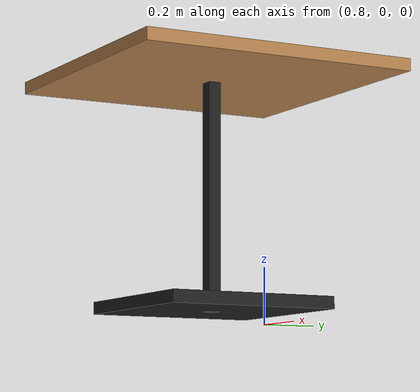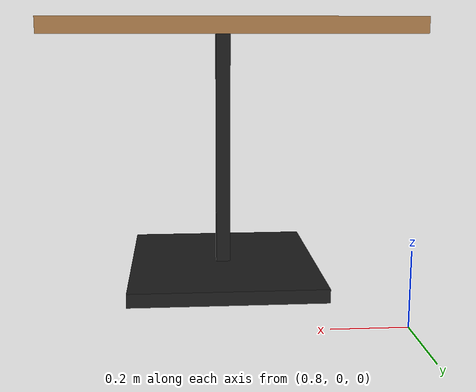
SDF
<?xml version="1.0" ?>
<sdf version="1.5">
    <model name='table_c'>
      <link name='link'>
        <collision name='surface'>
          <pose frame=''>0 0 0.755 0 -0 0</pose>
          <geometry>
            <box>
              <size>0.913 0.913 0.04</size>
            </box>
          </geometry>
          <max_contacts>10</max_contacts>
          <surface>
            <contact/>
            <friction>
              <ode/>
            </friction>
          </surface>
        </collision>
        <collision name='column'>
          <pose frame=''>0 0 0.37 0 -0 0</pose>
          <geometry>
            <box>
              <size>0.042 0.042 0.74</size>
            </box>
          </geometry>
          <max_contacts>10</max_contacts>
          <surface>
            <contact/>
            <friction>
              <ode/>
            </friction>
          </surface>
        </collision>
        <collision name='base'>
          <pose frame=''>0 0 0.02 0 -0 0</pose>
          <geometry>
            <box>
              <size>0.56 0.56 0.04</size>
            </box>
          </geometry>
          <max_contacts>10</max_contacts>
          <surface>
            <contact/>
            <friction>
              <ode/>
            </friction>
          </surface>
        </collision>
        <visual name='surface'>
          <pose frame=''>0 0 0.755 0 -0 0</pose>
          <geometry>
            <box>
              <size>0.913 0.913 0.04</size>
            </box>
          </geometry>
          <material>
            <script>
              <uri>file://media/materials/scripts/gazebo.material</uri>
              <name>Gazebo/WoodFloor</name>
            </script>
          </material>
        </visual>
        <visual name='column'>
          <pose frame=''>0 0 0.37 0 -0 0</pose>
          <geometry>
            <box>
              <size>0.042 0.042 0.74</size>
            </box>
          </geometry>
          <material>
            <script>
              <uri>file://media/materials/scripts/gazebo.material</uri>
              <name>Gazebo/Black</name>
            </script>
          </material>
        </visual>
        <visual name='base'>
          <pose frame=''>0 0 0.02 0 -0 0</pose>
          <geometry>
            <box>
              <size>0.56 0.56 0.04</size>
            </box>
          </geometry>
          <material>
            <script>
              <uri>file://media/materials/scripts/gazebo.material</uri>
              <name>Gazebo/Black</name>
            </script>
          </material>
        </visual>
        <self_collide>0</self_collide>
        <enable_wind>0</enable_wind>
        <gravity>1</gravity>
      </link>
      <pose frame=''>1.24259 -0.447897 0 0 -0 0</pose>
    </model>
</sdf>
